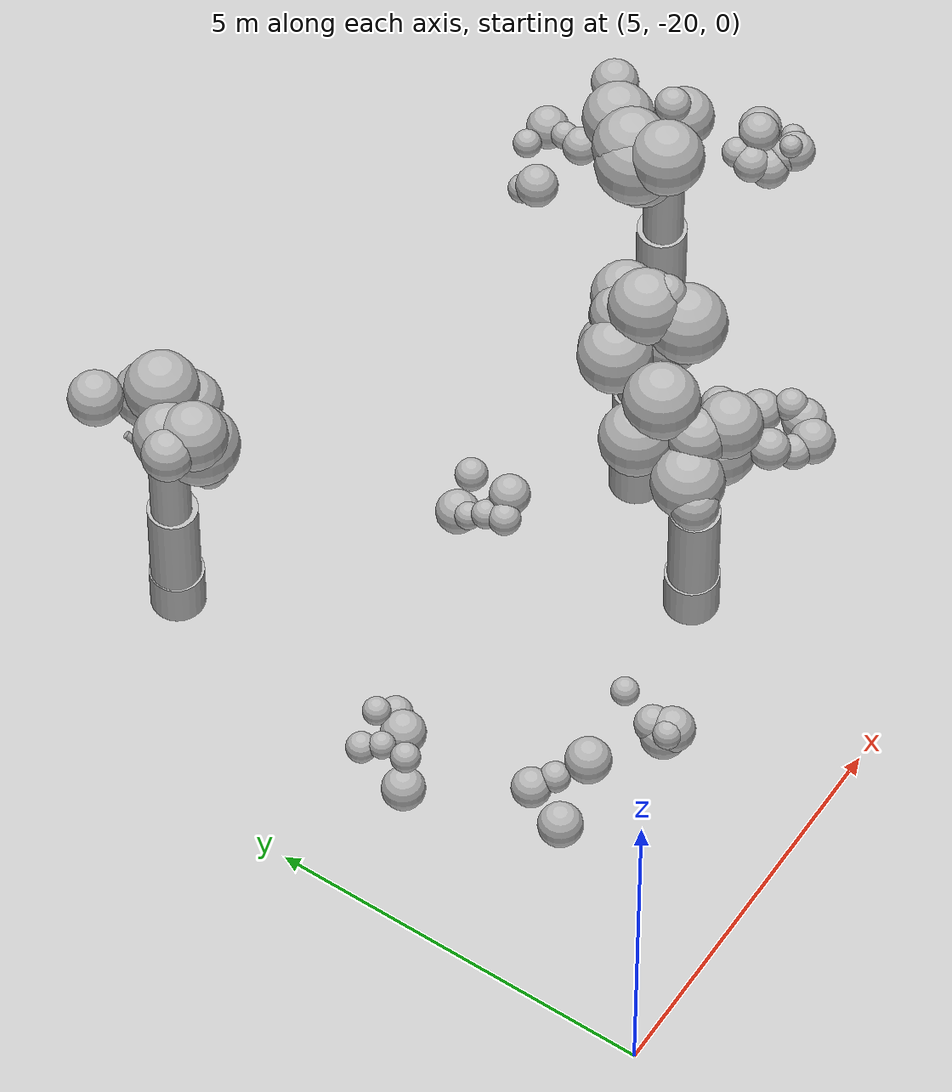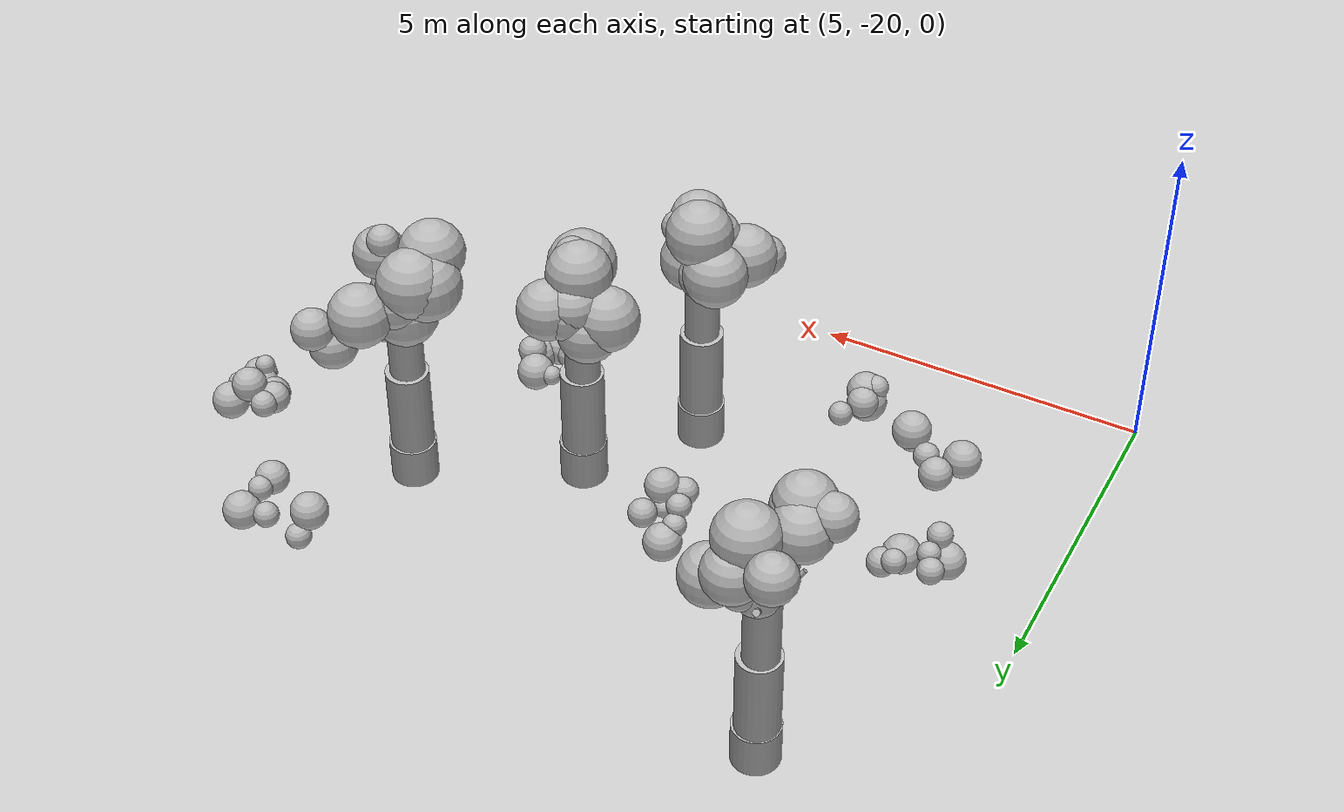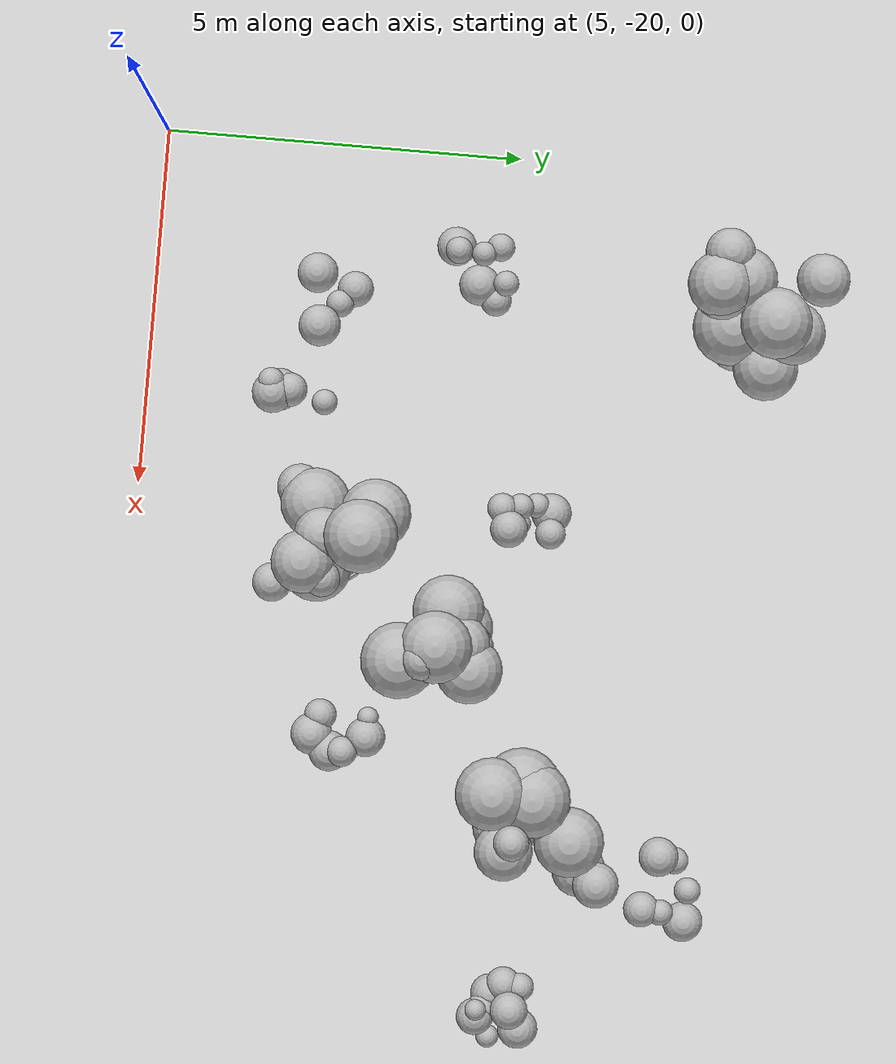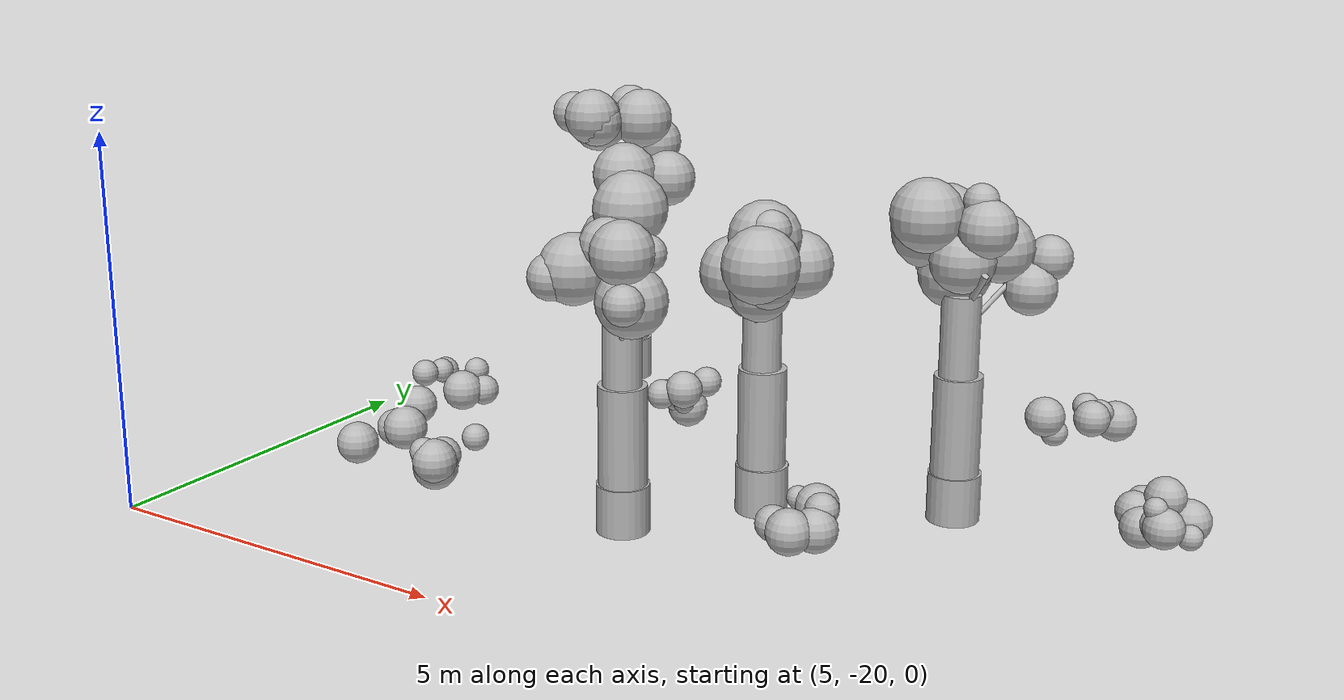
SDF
<sdf version="1.6">
 <world name="default">
  <model name="bush_1">
   <static>true</static>
   <pose>10.8140 -17.0598 0 0 0 0</pose>
   <link name="trunk">
    <pose>0 0 1.5000 0 0 0</pose>
    <collision name="trunk_c">
     <geometry><cylinder><radius>0.3500</radius><length>3.0000</length></cylinder></geometry>
    </collision>
   </link>
   <link name="trunk_v0">
    <pose>0.0004 -0.0008 0.3100 0 0 0</pose>
    <visual name="trunk_v0_v">
     <geometry><cylinder><radius>0.3448</radius><length>0.6448</length></cylinder></geometry>
     <material>
      <script>
       <uri>model://bushfire/materials/scripts</uri>
       <uri>model://bushfire/materials/textures</uri>
       <name>Bushfire/CharBark</name>
      </script>
     </material>
    </visual>
   </link>
   <link name="trunk_v1">
    <pose>0.0031 -0.0061 1.2700 0 0 0</pose>
    <visual name="trunk_v1_v">
     <geometry><cylinder><radius>0.3150</radius><length>1.3520</length></cylinder></geometry>
     <material>
      <script>
       <uri>model://bushfire/materials/scripts</uri>
       <uri>model://bushfire/materials/textures</uri>
       <name>Bushfire/BarkStringy</name>
      </script>
     </material>
    </visual>
   </link>
   <link name="trunk_v2">
    <pose>0.0079 -0.0153 2.4600 0 0 0</pose>
    <visual name="trunk_v2_v">
     <geometry><cylinder><radius>0.2520</radius><length>1.1232</length></cylinder></geometry>
     <material>
      <script>
       <uri>model://bushfire/materials/scripts</uri>
       <uri>model://bushfire/materials/textures</uri>
       <name>Bushfire/BarkStringy</name>
      </script>
     </material>
    </visual>
   </link>
   <link name="branch0">
    <pose>-0.2689 -0.1143 3.0742 0 0.8864 3.5434</pose>
    <visual name="branch0_v">
     <geometry><cylinder><radius>0.0545</radius><length>0.7542</length></cylinder></geometry>
     <material>
      <script>
       <uri>model://bushfire/materials/scripts</uri>
       <uri>model://bushfire/materials/textures</uri>
       <name>Bushfire/BarkStringy</name>
      </script>
     </material>
    </visual>
   </link>
   <link name="branch1">
    <pose>0.1735 -0.2664 2.6885 0 0.8909 5.2895</pose>
    <visual name="branch1_v">
     <geometry><cylinder><radius>0.0355</radius><length>0.8177</length></cylinder></geometry>
     <material>
      <script>
       <uri>model://bushfire/materials/scripts</uri>
       <uri>model://bushfire/materials/textures</uri>
       <name>Bushfire/BarkStringy</name>
      </script>
     </material>
    </visual>
   </link>
   <link name="branch2">
    <pose>0.1869 0.1069 2.9350 0 0.6885 6.8027</pose>
    <visual name="branch2_v">
     <geometry><cylinder><radius>0.0526</radius><length>0.6779</length></cylinder></geometry>
     <material>
      <script>
       <uri>model://bushfire/materials/scripts</uri>
       <uri>model://bushfire/materials/textures</uri>
       <name>Bushfire/BarkStringy</name>
      </script>
     </material>
    </visual>
   </link>
   <link name="branch3">
    <pose>-0.3016 0.1931 3.0876 0 0.8942 8.8553</pose>
    <visual name="branch3_v">
     <geometry><cylinder><radius>0.0506</radius><length>0.9186</length></cylinder></geometry>
     <material>
      <script>
       <uri>model://bushfire/materials/scripts</uri>
       <uri>model://bushfire/materials/textures</uri>
       <name>Bushfire/BarkStringy</name>
      </script>
     </material>
    </visual>
   </link>
   <link name="foliage0">
    <pose>-0.5634 -0.2258 3.4097 0 0 0</pose>
    <visual name="foliage0_v">
     <geometry><sphere><radius>0.4536</radius></sphere></geometry>
     <material>
      <script>
       <uri>model://bushfire/materials/scripts</uri>
       <uri>model://bushfire/materials/textures</uri>
       <name>Bushfire/Foliage2</name>
      </script>
     </material>
    </visual>
   </link>
   <link name="foliage1">
    <pose>-0.0675 -0.2180 3.7454 0 0 0</pose>
    <visual name="foliage1_v">
     <geometry><sphere><radius>0.2466</radius></sphere></geometry>
     <material>
      <script>
       <uri>model://bushfire/materials/scripts</uri>
       <uri>model://bushfire/materials/textures</uri>
       <name>Bushfire/Foliage2</name>
      </script>
     </material>
    </visual>
   </link>
   <link name="foliage2">
    <pose>0.2465 -0.1592 3.0982 0 0 0</pose>
    <visual name="foliage2_v">
     <geometry><sphere><radius>0.4574</radius></sphere></geometry>
     <material>
      <script>
       <uri>model://bushfire/materials/scripts</uri>
       <uri>model://bushfire/materials/textures</uri>
       <name>Bushfire/Foliage2</name>
      </script>
     </material>
    </visual>
   </link>
   <link name="foliage3">
    <pose>-0.2249 0.4694 3.4221 0 0 0</pose>
    <visual name="foliage3_v">
     <geometry><sphere><radius>0.3348</radius></sphere></geometry>
     <material>
      <script>
       <uri>model://bushfire/materials/scripts</uri>
       <uri>model://bushfire/materials/textures</uri>
       <name>Bushfire/Foliage1</name>
      </script>
     </material>
    </visual>
   </link>
   <link name="foliage4">
    <pose>-0.1455 -0.0868 3.7299 0 0 0</pose>
    <visual name="foliage4_v">
     <geometry><sphere><radius>0.3629</radius></sphere></geometry>
     <material>
      <script>
       <uri>model://bushfire/materials/scripts</uri>
       <uri>model://bushfire/materials/textures</uri>
       <name>Bushfire/Foliage1</name>
      </script>
     </material>
    </visual>
   </link>
   <link name="foliage5">
    <pose>0.4994 -0.7112 3.2250 0 0 0</pose>
    <visual name="foliage5_v">
     <geometry><sphere><radius>0.2549</radius></sphere></geometry>
     <material>
      <script>
       <uri>model://bushfire/materials/scripts</uri>
       <uri>model://bushfire/materials/textures</uri>
       <name>Bushfire/Foliage0</name>
      </script>
     </material>
    </visual>
   </link>
   <link name="foliage6">
    <pose>-0.1539 0.4210 4.0975 0 0 0</pose>
    <visual name="foliage6_v">
     <geometry><sphere><radius>0.4744</radius></sphere></geometry>
     <material>
      <script>
       <uri>model://bushfire/materials/scripts</uri>
       <uri>model://bushfire/materials/textures</uri>
       <name>Bushfire/Foliage2</name>
      </script>
     </material>
    </visual>
   </link>
   <link name="foliage7">
    <pose>-0.4708 0.5657 3.5893 0 0 0</pose>
    <visual name="foliage7_v">
     <geometry><sphere><radius>0.4593</radius></sphere></geometry>
     <material>
      <script>
       <uri>model://bushfire/materials/scripts</uri>
       <uri>model://bushfire/materials/textures</uri>
       <name>Bushfire/Foliage1</name>
      </script>
     </material>
    </visual>
   </link>
   <link name="foliage8">
    <pose>-0.7569 -0.4441 3.3286 0 0 0</pose>
    <visual name="foliage8_v">
     <geometry><sphere><radius>0.2995</radius></sphere></geometry>
     <material>
      <script>
       <uri>model://bushfire/materials/scripts</uri>
       <uri>model://bushfire/materials/textures</uri>
       <name>Bushfire/Foliage0</name>
      </script>
     </material>
    </visual>
   </link>
   <link name="foliage9">
    <pose>0.2177 -0.3086 3.7391 0 0 0</pose>
    <visual name="foliage9_v">
     <geometry><sphere><radius>0.4073</radius></sphere></geometry>
     <material>
      <script>
       <uri>model://bushfire/materials/scripts</uri>
       <uri>model://bushfire/materials/textures</uri>
       <name>Bushfire/Foliage1</name>
      </script>
     </material>
    </visual>
   </link>
   <link name="foliage10">
    <pose>0.4108 -0.0477 3.7026 0 0 0</pose>
    <visual name="foliage10_v">
     <geometry><sphere><radius>0.2364</radius></sphere></geometry>
     <material>
      <script>
       <uri>model://bushfire/materials/scripts</uri>
       <uri>model://bushfire/materials/textures</uri>
       <name>Bushfire/Foliage2</name>
      </script>
     </material>
    </visual>
   </link>
  </model>
  <model name="bush_28">
   <static>true</static>
   <pose>11.9613 -15.5196 0 0 0 0</pose>
   <link name="trunk">
    <pose>0 0 1.5000 0 0 0</pose>
    <collision name="trunk_c">
     <geometry><cylinder><radius>0.3500</radius><length>3.0000</length></cylinder></geometry>
    </collision>
   </link>
   <link name="trunk_v0">
    <pose>-0.0018 0.0001 0.3100 0 0 0</pose>
    <visual name="trunk_v0_v">
     <geometry><cylinder><radius>0.3448</radius><length>0.6448</length></cylinder></geometry>
     <material>
      <script>
       <uri>model://bushfire/materials/scripts</uri>
       <uri>model://bushfire/materials/textures</uri>
       <name>Bushfire/CharBark</name>
      </script>
     </material>
    </visual>
   </link>
   <link name="trunk_v1">
    <pose>-0.0131 0.0009 1.2700 0 0 0</pose>
    <visual name="trunk_v1_v">
     <geometry><cylinder><radius>0.3150</radius><length>1.3520</length></cylinder></geometry>
     <material>
      <script>
       <uri>model://bushfire/materials/scripts</uri>
       <uri>model://bushfire/materials/textures</uri>
       <name>Bushfire/BarkSmooth</name>
      </script>
     </material>
    </visual>
   </link>
   <link name="trunk_v2">
    <pose>-0.0330 0.0023 2.4600 0 0 0</pose>
    <visual name="trunk_v2_v">
     <geometry><cylinder><radius>0.2520</radius><length>1.1232</length></cylinder></geometry>
     <material>
      <script>
       <uri>model://bushfire/materials/scripts</uri>
       <uri>model://bushfire/materials/textures</uri>
       <name>Bushfire/BarkSmooth</name>
      </script>
     </material>
    </visual>
   </link>
   <link name="branch0">
    <pose>0.1153 0.2760 2.8226 0 0.9453 1.1750</pose>
    <visual name="branch0_v">
     <geometry><cylinder><radius>0.0360</radius><length>0.7380</length></cylinder></geometry>
     <material>
      <script>
       <uri>model://bushfire/materials/scripts</uri>
       <uri>model://bushfire/materials/textures</uri>
       <name>Bushfire/BarkSmooth</name>
      </script>
     </material>
    </visual>
   </link>
   <link name="branch1">
    <pose>-0.2728 0.1218 2.7674 0 0.8919 2.7217</pose>
    <visual name="branch1_v">
     <geometry><cylinder><radius>0.0367</radius><length>0.7677</length></cylinder></geometry>
     <material>
      <script>
       <uri>model://bushfire/materials/scripts</uri>
       <uri>model://bushfire/materials/textures</uri>
       <name>Bushfire/BarkSmooth</name>
      </script>
     </material>
    </visual>
   </link>
   <link name="branch2">
    <pose>0.0167 -0.3280 2.7492 0 0.8015 4.7632</pose>
    <visual name="branch2_v">
     <geometry><cylinder><radius>0.0413</radius><length>0.9144</length></cylinder></geometry>
     <material>
      <script>
       <uri>model://bushfire/materials/scripts</uri>
       <uri>model://bushfire/materials/textures</uri>
       <name>Bushfire/BarkSmooth</name>
      </script>
     </material>
    </visual>
   </link>
   <link name="foliage0">
    <pose>0.1404 0.3869 3.3226 0 0 0</pose>
    <visual name="foliage0_v">
     <geometry><sphere><radius>0.3033</radius></sphere></geometry>
     <material>
      <script>
       <uri>model://bushfire/materials/scripts</uri>
       <uri>model://bushfire/materials/textures</uri>
       <name>Bushfire/Foliage1</name>
      </script>
     </material>
    </visual>
   </link>
   <link name="foliage1">
    <pose>-0.2549 0.2236 2.9393 0 0 0</pose>
    <visual name="foliage1_v">
     <geometry><sphere><radius>0.4356</radius></sphere></geometry>
     <material>
      <script>
       <uri>model://bushfire/materials/scripts</uri>
       <uri>model://bushfire/materials/textures</uri>
       <name>Bushfire/Foliage1</name>
      </script>
     </material>
    </visual>
   </link>
   <link name="foliage2">
    <pose>0.2262 -0.5211 3.4523 0 0 0</pose>
    <visual name="foliage2_v">
     <geometry><sphere><radius>0.4966</radius></sphere></geometry>
     <material>
      <script>
       <uri>model://bushfire/materials/scripts</uri>
       <uri>model://bushfire/materials/textures</uri>
       <name>Bushfire/Foliage0</name>
      </script>
     </material>
    </visual>
   </link>
   <link name="foliage3">
    <pose>0.2799 0.3908 3.2747 0 0 0</pose>
    <visual name="foliage3_v">
     <geometry><sphere><radius>0.4359</radius></sphere></geometry>
     <material>
      <script>
       <uri>model://bushfire/materials/scripts</uri>
       <uri>model://bushfire/materials/textures</uri>
       <name>Bushfire/Foliage2</name>
      </script>
     </material>
    </visual>
   </link>
   <link name="foliage4">
    <pose>-0.4697 0.0607 3.1471 0 0 0</pose>
    <visual name="foliage4_v">
     <geometry><sphere><radius>0.4677</radius></sphere></geometry>
     <material>
      <script>
       <uri>model://bushfire/materials/scripts</uri>
       <uri>model://bushfire/materials/textures</uri>
       <name>Bushfire/Foliage1</name>
      </script>
     </material>
    </visual>
   </link>
   <link name="foliage5">
    <pose>0.1278 -0.3514 3.0749 0 0 0</pose>
    <visual name="foliage5_v">
     <geometry><sphere><radius>0.3924</radius></sphere></geometry>
     <material>
      <script>
       <uri>model://bushfire/materials/scripts</uri>
       <uri>model://bushfire/materials/textures</uri>
       <name>Bushfire/Foliage0</name>
      </script>
     </material>
    </visual>
   </link>
   <link name="foliage6">
    <pose>0.0138 0.3159 3.2257 0 0 0</pose>
    <visual name="foliage6_v">
     <geometry><sphere><radius>0.3752</radius></sphere></geometry>
     <material>
      <script>
       <uri>model://bushfire/materials/scripts</uri>
       <uri>model://bushfire/materials/textures</uri>
       <name>Bushfire/Foliage2</name>
      </script>
     </material>
    </visual>
   </link>
   <link name="foliage7">
    <pose>-0.4136 -0.0324 3.2600 0 0 0</pose>
    <visual name="foliage7_v">
     <geometry><sphere><radius>0.2502</radius></sphere></geometry>
     <material>
      <script>
       <uri>model://bushfire/materials/scripts</uri>
       <uri>model://bushfire/materials/textures</uri>
       <name>Bushfire/Foliage0</name>
      </script>
     </material>
    </visual>
   </link>
   <link name="foliage8">
    <pose>0.2904 -0.4616 3.2398 0 0 0</pose>
    <visual name="foliage8_v">
     <geometry><sphere><radius>0.3551</radius></sphere></geometry>
     <material>
      <script>
       <uri>model://bushfire/materials/scripts</uri>
       <uri>model://bushfire/materials/textures</uri>
       <name>Bushfire/Foliage2</name>
      </script>
     </material>
    </visual>
   </link>
   <link name="foliage9">
    <pose>0.0183 -0.0582 3.6886 0 0 0</pose>
    <visual name="foliage9_v">
     <geometry><sphere><radius>0.4704</radius></sphere></geometry>
     <material>
      <script>
       <uri>model://bushfire/materials/scripts</uri>
       <uri>model://bushfire/materials/textures</uri>
       <name>Bushfire/Foliage0</name>
      </script>
     </material>
    </visual>
   </link>
   <link name="foliage10">
    <pose>-0.0392 0.2539 3.3386 0 0 0</pose>
    <visual name="foliage10_v">
     <geometry><sphere><radius>0.3864</radius></sphere></geometry>
     <material>
      <script>
       <uri>model://bushfire/materials/scripts</uri>
       <uri>model://bushfire/materials/textures</uri>
       <name>Bushfire/Foliage1</name>
      </script>
     </material>
    </visual>
   </link>
   <link name="foliage11">
    <pose>0.1950 -0.2207 3.8300 0 0 0</pose>
    <visual name="foliage11_v">
     <geometry><sphere><radius>0.2654</radius></sphere></geometry>
     <material>
      <script>
       <uri>model://bushfire/materials/scripts</uri>
       <uri>model://bushfire/materials/textures</uri>
       <name>Bushfire/Foliage0</name>
      </script>
     </material>
    </visual>
   </link>
  </model>
  <model name="bush_30">
   <static>true</static>
   <pose>7.3890 -11.7822 0 0 0 0</pose>
   <link name="trunk">
    <pose>0 0 1.5000 0 0 0</pose>
    <collision name="trunk_c">
     <geometry><cylinder><radius>0.3500</radius><length>3.0000</length></cylinder></geometry>
    </collision>
   </link>
   <link name="trunk_v0">
    <pose>-0.0018 0.0003 0.3100 0 0 0</pose>
    <visual name="trunk_v0_v">
     <geometry><cylinder><radius>0.3448</radius><length>0.6448</length></cylinder></geometry>
     <material>
      <script>
       <uri>model://bushfire/materials/scripts</uri>
       <uri>model://bushfire/materials/textures</uri>
       <name>Bushfire/CharBark</name>
      </script>
     </material>
    </visual>
   </link>
   <link name="trunk_v1">
    <pose>-0.0131 0.0024 1.2700 0 0 0</pose>
    <visual name="trunk_v1_v">
     <geometry><cylinder><radius>0.3150</radius><length>1.3520</length></cylinder></geometry>
     <material>
      <script>
       <uri>model://bushfire/materials/scripts</uri>
       <uri>model://bushfire/materials/textures</uri>
       <name>Bushfire/BarkSmooth</name>
      </script>
     </material>
    </visual>
   </link>
   <link name="trunk_v2">
    <pose>-0.0331 0.0062 2.4600 0 0 0</pose>
    <visual name="trunk_v2_v">
     <geometry><cylinder><radius>0.2520</radius><length>1.1232</length></cylinder></geometry>
     <material>
      <script>
       <uri>model://bushfire/materials/scripts</uri>
       <uri>model://bushfire/materials/textures</uri>
       <name>Bushfire/BarkSmooth</name>
      </script>
     </material>
    </visual>
   </link>
   <link name="branch0">
    <pose>-0.0874 0.2546 3.0361 0 0.8356 1.9014</pose>
    <visual name="branch0_v">
     <geometry><cylinder><radius>0.0492</radius><length>0.7259</length></cylinder></geometry>
     <material>
      <script>
       <uri>model://bushfire/materials/scripts</uri>
       <uri>model://bushfire/materials/textures</uri>
       <name>Bushfire/BarkSmooth</name>
      </script>
     </material>
    </visual>
   </link>
   <link name="branch1">
    <pose>-0.2129 -0.1761 3.0011 0 0.6851 3.8325</pose>
    <visual name="branch1_v">
     <geometry><cylinder><radius>0.0344</radius><length>0.8733</length></cylinder></geometry>
     <material>
      <script>
       <uri>model://bushfire/materials/scripts</uri>
       <uri>model://bushfire/materials/textures</uri>
       <name>Bushfire/BarkSmooth</name>
      </script>
     </material>
    </visual>
   </link>
   <link name="branch2">
    <pose>0.1911 -0.0480 2.7357 0 0.7821 6.0371</pose>
    <visual name="branch2_v">
     <geometry><cylinder><radius>0.0348</radius><length>0.5592</length></cylinder></geometry>
     <material>
      <script>
       <uri>model://bushfire/materials/scripts</uri>
       <uri>model://bushfire/materials/textures</uri>
       <name>Bushfire/BarkSmooth</name>
      </script>
     </material>
    </visual>
   </link>
   <link name="foliage0">
    <pose>0.1929 0.4359 3.7376 0 0 0</pose>
    <visual name="foliage0_v">
     <geometry><sphere><radius>0.4119</radius></sphere></geometry>
     <material>
      <script>
       <uri>model://bushfire/materials/scripts</uri>
       <uri>model://bushfire/materials/textures</uri>
       <name>Bushfire/Foliage1</name>
      </script>
     </material>
    </visual>
   </link>
   <link name="foliage1">
    <pose>-0.6938 -0.4912 4.2585 0 0 0</pose>
    <visual name="foliage1_v">
     <geometry><sphere><radius>0.3180</radius></sphere></geometry>
     <material>
      <script>
       <uri>model://bushfire/materials/scripts</uri>
       <uri>model://bushfire/materials/textures</uri>
       <name>Bushfire/Foliage1</name>
      </script>
     </material>
    </visual>
   </link>
   <link name="foliage2">
    <pose>0.1453 -0.3394 3.3462 0 0 0</pose>
    <visual name="foliage2_v">
     <geometry><sphere><radius>0.4945</radius></sphere></geometry>
     <material>
      <script>
       <uri>model://bushfire/materials/scripts</uri>
       <uri>model://bushfire/materials/textures</uri>
       <name>Bushfire/Foliage1</name>
      </script>
     </material>
    </visual>
   </link>
   <link name="foliage3">
    <pose>-0.4527 0.7167 4.1976 0 0 0</pose>
    <visual name="foliage3_v">
     <geometry><sphere><radius>0.3392</radius></sphere></geometry>
     <material>
      <script>
       <uri>model://bushfire/materials/scripts</uri>
       <uri>model://bushfire/materials/textures</uri>
       <name>Bushfire/Foliage0</name>
      </script>
     </material>
    </visual>
   </link>
   <link name="foliage4">
    <pose>-0.2896 -0.5772 4.2374 0 0 0</pose>
    <visual name="foliage4_v">
     <geometry><sphere><radius>0.4225</radius></sphere></geometry>
     <material>
      <script>
       <uri>model://bushfire/materials/scripts</uri>
       <uri>model://bushfire/materials/textures</uri>
       <name>Bushfire/Foliage0</name>
      </script>
     </material>
    </visual>
   </link>
   <link name="foliage5">
    <pose>0.0134 0.0624 3.1506 0 0 0</pose>
    <visual name="foliage5_v">
     <geometry><sphere><radius>0.3346</radius></sphere></geometry>
     <material>
      <script>
       <uri>model://bushfire/materials/scripts</uri>
       <uri>model://bushfire/materials/textures</uri>
       <name>Bushfire/Foliage2</name>
      </script>
     </material>
    </visual>
   </link>
   <link name="foliage6">
    <pose>0.1327 0.1721 4.1417 0 0 0</pose>
    <visual name="foliage6_v">
     <geometry><sphere><radius>0.4591</radius></sphere></geometry>
     <material>
      <script>
       <uri>model://bushfire/materials/scripts</uri>
       <uri>model://bushfire/materials/textures</uri>
       <name>Bushfire/Foliage0</name>
      </script>
     </material>
    </visual>
   </link>
   <link name="foliage7">
    <pose>-0.2251 -0.5521 4.1694 0 0 0</pose>
    <visual name="foliage7_v">
     <geometry><sphere><radius>0.3795</radius></sphere></geometry>
     <material>
      <script>
       <uri>model://bushfire/materials/scripts</uri>
       <uri>model://bushfire/materials/textures</uri>
       <name>Bushfire/Foliage0</name>
      </script>
     </material>
    </visual>
   </link>
   <link name="foliage8">
    <pose>0.6164 0.1573 3.2570 0 0 0</pose>
    <visual name="foliage8_v">
     <geometry><sphere><radius>0.4270</radius></sphere></geometry>
     <material>
      <script>
       <uri>model://bushfire/materials/scripts</uri>
       <uri>model://bushfire/materials/textures</uri>
       <name>Bushfire/Foliage2</name>
      </script>
     </material>
    </visual>
   </link>
   <link name="foliage9">
    <pose>0.0443 0.0770 3.3431 0 0 0</pose>
    <visual name="foliage9_v">
     <geometry><sphere><radius>0.2146</radius></sphere></geometry>
     <material>
      <script>
       <uri>model://bushfire/materials/scripts</uri>
       <uri>model://bushfire/materials/textures</uri>
       <name>Bushfire/Foliage1</name>
      </script>
     </material>
    </visual>
   </link>
   <link name="foliage10">
    <pose>-0.3848 -0.2713 4.0855 0 0 0</pose>
    <visual name="foliage10_v">
     <geometry><sphere><radius>0.4240</radius></sphere></geometry>
     <material>
      <script>
       <uri>model://bushfire/materials/scripts</uri>
       <uri>model://bushfire/materials/textures</uri>
       <name>Bushfire/Foliage2</name>
      </script>
     </material>
    </visual>
   </link>
   <link name="foliage11">
    <pose>0.1849 -0.4299 2.8834 0 0 0</pose>
    <visual name="foliage11_v">
     <geometry><sphere><radius>0.2454</radius></sphere></geometry>
     <material>
      <script>
       <uri>model://bushfire/materials/scripts</uri>
       <uri>model://bushfire/materials/textures</uri>
       <name>Bushfire/Foliage2</name>
      </script>
     </material>
    </visual>
   </link>
   <link name="foliage12">
    <pose>0.1788 0.2338 3.2743 0 0 0</pose>
    <visual name="foliage12_v">
     <geometry><sphere><radius>0.2810</radius></sphere></geometry>
     <material>
      <script>
       <uri>model://bushfire/materials/scripts</uri>
       <uri>model://bushfire/materials/textures</uri>
       <name>Bushfire/Foliage1</name>
      </script>
     </material>
    </visual>
   </link>
  </model>
  <model name="bush_32">
   <static>true</static>
   <pose>14.1857 -14.4156 0 0 0 0</pose>
   <link name="trunk">
    <pose>0 0 1.5000 0 0 0</pose>
    <collision name="trunk_c">
     <geometry><cylinder><radius>0.3500</radius><length>3.0000</length></cylinder></geometry>
    </collision>
   </link>
   <link name="trunk_v0">
    <pose>-0.0004 -0.0014 0.3100 0 0 0</pose>
    <visual name="trunk_v0_v">
     <geometry><cylinder><radius>0.3448</radius><length>0.6448</length></cylinder></geometry>
     <material>
      <script>
       <uri>model://bushfire/materials/scripts</uri>
       <uri>model://bushfire/materials/textures</uri>
       <name>Bushfire/CharBark</name>
      </script>
     </material>
    </visual>
   </link>
   <link name="trunk_v1">
    <pose>-0.0030 -0.0098 1.2700 0 0 0</pose>
    <visual name="trunk_v1_v">
     <geometry><cylinder><radius>0.3150</radius><length>1.3520</length></cylinder></geometry>
     <material>
      <script>
       <uri>model://bushfire/materials/scripts</uri>
       <uri>model://bushfire/materials/textures</uri>
       <name>Bushfire/BarkStringy</name>
      </script>
     </material>
    </visual>
   </link>
   <link name="trunk_v2">
    <pose>-0.0076 -0.0246 2.4600 0 0 0</pose>
    <visual name="trunk_v2_v">
     <geometry><cylinder><radius>0.2520</radius><length>1.1232</length></cylinder></geometry>
     <material>
      <script>
       <uri>model://bushfire/materials/scripts</uri>
       <uri>model://bushfire/materials/textures</uri>
       <name>Bushfire/BarkStringy</name>
      </script>
     </material>
    </visual>
   </link>
   <link name="branch0">
    <pose>0.1480 0.3706 2.7666 0 1.0079 1.1909</pose>
    <visual name="branch0_v">
     <geometry><cylinder><radius>0.0355</radius><length>0.9436</length></cylinder></geometry>
     <material>
      <script>
       <uri>model://bushfire/materials/scripts</uri>
       <uri>model://bushfire/materials/textures</uri>
       <name>Bushfire/BarkStringy</name>
      </script>
     </material>
    </visual>
   </link>
   <link name="branch1">
    <pose>-0.3107 -0.0276 3.0321 0 0.8666 3.2303</pose>
    <visual name="branch1_v">
     <geometry><cylinder><radius>0.0327</radius><length>0.8185</length></cylinder></geometry>
     <material>
      <script>
       <uri>model://bushfire/materials/scripts</uri>
       <uri>model://bushfire/materials/textures</uri>
       <name>Bushfire/BarkStringy</name>
      </script>
     </material>
    </visual>
   </link>
   <link name="branch2">
    <pose>0.2007 -0.1463 3.0537 0 0.6634 5.6535</pose>
    <visual name="branch2_v">
     <geometry><cylinder><radius>0.0450</radius><length>0.8066</length></cylinder></geometry>
     <material>
      <script>
       <uri>model://bushfire/materials/scripts</uri>
       <uri>model://bushfire/materials/textures</uri>
       <name>Bushfire/BarkStringy</name>
      </script>
     </material>
    </visual>
   </link>
   <link name="foliage0">
    <pose>0.1444 0.7516 3.4713 0 0 0</pose>
    <visual name="foliage0_v">
     <geometry><sphere><radius>0.4543</radius></sphere></geometry>
     <material>
      <script>
       <uri>model://bushfire/materials/scripts</uri>
       <uri>model://bushfire/materials/textures</uri>
       <name>Bushfire/Foliage1</name>
      </script>
     </material>
    </visual>
   </link>
   <link name="foliage1">
    <pose>-0.4074 -0.2901 4.0291 0 0 0</pose>
    <visual name="foliage1_v">
     <geometry><sphere><radius>0.4698</radius></sphere></geometry>
     <material>
      <script>
       <uri>model://bushfire/materials/scripts</uri>
       <uri>model://bushfire/materials/textures</uri>
       <name>Bushfire/Foliage0</name>
      </script>
     </material>
    </visual>
   </link>
   <link name="foliage2">
    <pose>0.1803 0.0007 4.2207 0 0 0</pose>
    <visual name="foliage2_v">
     <geometry><sphere><radius>0.2270</radius></sphere></geometry>
     <material>
      <script>
       <uri>model://bushfire/materials/scripts</uri>
       <uri>model://bushfire/materials/textures</uri>
       <name>Bushfire/Foliage0</name>
      </script>
     </material>
    </visual>
   </link>
   <link name="foliage3">
    <pose>0.5204 0.9246 2.9501 0 0 0</pose>
    <visual name="foliage3_v">
     <geometry><sphere><radius>0.3511</radius></sphere></geometry>
     <material>
      <script>
       <uri>model://bushfire/materials/scripts</uri>
       <uri>model://bushfire/materials/textures</uri>
       <name>Bushfire/Foliage1</name>
      </script>
     </material>
    </visual>
   </link>
   <link name="foliage4">
    <pose>-0.2119 0.1807 3.2319 0 0 0</pose>
    <visual name="foliage4_v">
     <geometry><sphere><radius>0.4725</radius></sphere></geometry>
     <material>
      <script>
       <uri>model://bushfire/materials/scripts</uri>
       <uri>model://bushfire/materials/textures</uri>
       <name>Bushfire/Foliage1</name>
      </script>
     </material>
    </visual>
   </link>
   <link name="foliage5">
    <pose>0.0032 -0.0815 3.4672 0 0 0</pose>
    <visual name="foliage5_v">
     <geometry><sphere><radius>0.4231</radius></sphere></geometry>
     <material>
      <script>
       <uri>model://bushfire/materials/scripts</uri>
       <uri>model://bushfire/materials/textures</uri>
       <name>Bushfire/Foliage2</name>
      </script>
     </material>
    </visual>
   </link>
   <link name="foliage6">
    <pose>0.6748 1.1468 3.3203 0 0 0</pose>
    <visual name="foliage6_v">
     <geometry><sphere><radius>0.2986</radius></sphere></geometry>
     <material>
      <script>
       <uri>model://bushfire/materials/scripts</uri>
       <uri>model://bushfire/materials/textures</uri>
       <name>Bushfire/Foliage2</name>
      </script>
     </material>
    </visual>
   </link>
   <link name="foliage7">
    <pose>-0.3821 0.2197 3.8436 0 0 0</pose>
    <visual name="foliage7_v">
     <geometry><sphere><radius>0.4992</radius></sphere></geometry>
     <material>
      <script>
       <uri>model://bushfire/materials/scripts</uri>
       <uri>model://bushfire/materials/textures</uri>
       <name>Bushfire/Foliage0</name>
      </script>
     </material>
    </visual>
   </link>
   <link name="foliage8">
    <pose>0.3101 -0.0848 3.9103 0 0 0</pose>
    <visual name="foliage8_v">
     <geometry><sphere><radius>0.3749</radius></sphere></geometry>
     <material>
      <script>
       <uri>model://bushfire/materials/scripts</uri>
       <uri>model://bushfire/materials/textures</uri>
       <name>Bushfire/Foliage0</name>
      </script>
     </material>
    </visual>
   </link>
   <link name="foliage9">
    <pose>-0.1949 0.3987 3.5395 0 0 0</pose>
    <visual name="foliage9_v">
     <geometry><sphere><radius>0.3546</radius></sphere></geometry>
     <material>
      <script>
       <uri>model://bushfire/materials/scripts</uri>
       <uri>model://bushfire/materials/textures</uri>
       <name>Bushfire/Foliage1</name>
      </script>
     </material>
    </visual>
   </link>
   <link name="foliage10">
    <pose>-0.5226 0.0861 3.7543 0 0 0</pose>
    <visual name="foliage10_v">
     <geometry><sphere><radius>0.5037</radius></sphere></geometry>
     <material>
      <script>
       <uri>model://bushfire/materials/scripts</uri>
       <uri>model://bushfire/materials/textures</uri>
       <name>Bushfire/Foliage2</name>
      </script>
     </material>
    </visual>
   </link>
  </model>
  <model name="scrub">
   <static>true</static>
   <link name="scrub4_0">
    <pose>6.4853 -15.7530 0.9473 0 0 0</pose>
    <visual name="scrub4_0_v">
     <geometry><sphere><radius>0.1864</radius></sphere></geometry>
     <material>
      <script>
       <uri>model://bushfire/materials/scripts</uri>
       <uri>model://bushfire/materials/textures</uri>
       <name>Bushfire/Foliage1</name>
      </script>
     </material>
    </visual>
   </link>
   <link name="scrub4_1">
    <pose>6.9093 -15.4338 0.6718 0 0 0</pose>
    <visual name="scrub4_1_v">
     <geometry><sphere><radius>0.2835</radius></sphere></geometry>
     <material>
      <script>
       <uri>model://bushfire/materials/scripts</uri>
       <uri>model://bushfire/materials/textures</uri>
       <name>Bushfire/Foliage0</name>
      </script>
     </material>
    </visual>
   </link>
   <link name="scrub4_2">
    <pose>6.3657 -15.7989 0.4534 0 0 0</pose>
    <visual name="scrub4_2_v">
     <geometry><sphere><radius>0.2726</radius></sphere></geometry>
     <material>
      <script>
       <uri>model://bushfire/materials/scripts</uri>
       <uri>model://bushfire/materials/textures</uri>
       <name>Bushfire/Foliage1</name>
      </script>
     </material>
    </visual>
   </link>
   <link name="scrub4_3">
    <pose>6.3836 -15.1817 0.8126 0 0 0</pose>
    <visual name="scrub4_3_v">
     <geometry><sphere><radius>0.1932</radius></sphere></geometry>
     <material>
      <script>
       <uri>model://bushfire/materials/scripts</uri>
       <uri>model://bushfire/materials/textures</uri>
       <name>Bushfire/Foliage2</name>
      </script>
     </material>
    </visual>
   </link>
   <link name="scrub4_4">
    <pose>6.8830 -15.0678 0.8752 0 0 0</pose>
    <visual name="scrub4_4_v">
     <geometry><sphere><radius>0.1768</radius></sphere></geometry>
     <material>
      <script>
       <uri>model://bushfire/materials/scripts</uri>
       <uri>model://bushfire/materials/textures</uri>
       <name>Bushfire/Foliage0</name>
      </script>
     </material>
    </visual>
   </link>
   <link name="scrub4_5">
    <pose>7.1064 -15.1918 0.6442 0 0 0</pose>
    <visual name="scrub4_5_v">
     <geometry><sphere><radius>0.2145</radius></sphere></geometry>
     <material>
      <script>
       <uri>model://bushfire/materials/scripts</uri>
       <uri>model://bushfire/materials/textures</uri>
       <name>Bushfire/Foliage2</name>
      </script>
     </material>
    </visual>
   </link>
   <link name="scrub4_6">
    <pose>6.8027 -15.4537 0.6832 0 0 0</pose>
    <visual name="scrub4_6_v">
     <geometry><sphere><radius>0.1571</radius></sphere></geometry>
     <material>
      <script>
       <uri>model://bushfire/materials/scripts</uri>
       <uri>model://bushfire/materials/textures</uri>
       <name>Bushfire/Foliage1</name>
      </script>
     </material>
    </visual>
   </link>
   <link name="scrub4_7">
    <pose>6.5017 -15.4024 0.8963 0 0 0</pose>
    <visual name="scrub4_7_v">
     <geometry><sphere><radius>0.1692</radius></sphere></geometry>
     <material>
      <script>
       <uri>model://bushfire/materials/scripts</uri>
       <uri>model://bushfire/materials/textures</uri>
       <name>Bushfire/Foliage0</name>
      </script>
     </material>
    </visual>
   </link>
   <link name="scrub17_0">
    <pose>8.7348 -17.4248 0.9370 0 0 0</pose>
    <visual name="scrub17_0_v">
     <geometry><sphere><radius>0.1765</radius></sphere></geometry>
     <material>
      <script>
       <uri>model://bushfire/materials/scripts</uri>
       <uri>model://bushfire/materials/textures</uri>
       <name>Bushfire/Foliage1</name>
      </script>
     </material>
    </visual>
   </link>
   <link name="scrub17_1">
    <pose>8.5921 -17.9195 0.8204 0 0 0</pose>
    <visual name="scrub17_1_v">
     <geometry><sphere><radius>0.2348</radius></sphere></geometry>
     <material>
      <script>
       <uri>model://bushfire/materials/scripts</uri>
       <uri>model://bushfire/materials/textures</uri>
       <name>Bushfire/Foliage1</name>
      </script>
     </material>
    </visual>
   </link>
   <link name="scrub17_2">
    <pose>8.4999 -18.1839 0.9306 0 0 0</pose>
    <visual name="scrub17_2_v">
     <geometry><sphere><radius>0.1833</radius></sphere></geometry>
     <material>
      <script>
       <uri>model://bushfire/materials/scripts</uri>
       <uri>model://bushfire/materials/textures</uri>
       <name>Bushfire/Foliage0</name>
      </script>
     </material>
    </visual>
   </link>
   <link name="scrub17_3">
    <pose>8.6491 -18.1605 0.8261 0 0 0</pose>
    <visual name="scrub17_3_v">
     <geometry><sphere><radius>0.2853</radius></sphere></geometry>
     <material>
      <script>
       <uri>model://bushfire/materials/scripts</uri>
       <uri>model://bushfire/materials/textures</uri>
       <name>Bushfire/Foliage0</name>
      </script>
     </material>
    </visual>
   </link>
   <link name="scrub17_4">
    <pose>8.5896 -18.0752 0.7078 0 0 0</pose>
    <visual name="scrub17_4_v">
     <geometry><sphere><radius>0.2949</radius></sphere></geometry>
     <material>
      <script>
       <uri>model://bushfire/materials/scripts</uri>
       <uri>model://bushfire/materials/textures</uri>
       <name>Bushfire/Foliage0</name>
      </script>
     </material>
    </visual>
   </link>
   <link name="scrub20_0">
    <pose>7.1103 -17.1449 0.6684 0 0 0</pose>
    <visual name="scrub20_0_v">
     <geometry><sphere><radius>0.2489</radius></sphere></geometry>
     <material>
      <script>
       <uri>model://bushfire/materials/scripts</uri>
       <uri>model://bushfire/materials/textures</uri>
       <name>Bushfire/Foliage2</name>
      </script>
     </material>
    </visual>
   </link>
   <link name="scrub20_1">
    <pose>7.6800 -17.5861 0.9103 0 0 0</pose>
    <visual name="scrub20_1_v">
     <geometry><sphere><radius>0.2887</radius></sphere></geometry>
     <material>
      <script>
       <uri>model://bushfire/materials/scripts</uri>
       <uri>model://bushfire/materials/textures</uri>
       <name>Bushfire/Foliage0</name>
      </script>
     </material>
    </visual>
   </link>
   <link name="scrub20_2">
    <pose>7.6394 -17.5339 0.8137 0 0 0</pose>
    <visual name="scrub20_2_v">
     <geometry><sphere><radius>0.1984</radius></sphere></geometry>
     <material>
      <script>
       <uri>model://bushfire/materials/scripts</uri>
       <uri>model://bushfire/materials/textures</uri>
       <name>Bushfire/Foliage1</name>
      </script>
     </material>
    </visual>
   </link>
   <link name="scrub20_3">
    <pose>6.9123 -17.6915 0.5739 0 0 0</pose>
    <visual name="scrub20_3_v">
     <geometry><sphere><radius>0.2807</radius></sphere></geometry>
     <material>
      <script>
       <uri>model://bushfire/materials/scripts</uri>
       <uri>model://bushfire/materials/textures</uri>
       <name>Bushfire/Foliage0</name>
      </script>
     </material>
    </visual>
   </link>
   <link name="scrub20_4">
    <pose>7.3395 -17.3365 0.7654 0 0 0</pose>
    <visual name="scrub20_4_v">
     <geometry><sphere><radius>0.1917</radius></sphere></geometry>
     <material>
      <script>
       <uri>model://bushfire/materials/scripts</uri>
       <uri>model://bushfire/materials/textures</uri>
       <name>Bushfire/Foliage2</name>
      </script>
     </material>
    </visual>
   </link>
   <link name="scrub27_0">
    <pose>16.8855 -14.6523 0.8070 0 0 0</pose>
    <visual name="scrub27_0_v">
     <geometry><sphere><radius>0.1458</radius></sphere></geometry>
     <material>
      <script>
       <uri>model://bushfire/materials/scripts</uri>
       <uri>model://bushfire/materials/textures</uri>
       <name>Bushfire/Foliage2</name>
      </script>
     </material>
    </visual>
   </link>
   <link name="scrub27_1">
    <pose>16.8570 -14.1934 0.7938 0 0 0</pose>
    <visual name="scrub27_1_v">
     <geometry><sphere><radius>0.2592</radius></sphere></geometry>
     <material>
      <script>
       <uri>model://bushfire/materials/scripts</uri>
       <uri>model://bushfire/materials/textures</uri>
       <name>Bushfire/Foliage0</name>
      </script>
     </material>
    </visual>
   </link>
   <link name="scrub27_2">
    <pose>17.2696 -14.4568 0.4571 0 0 0</pose>
    <visual name="scrub27_2_v">
     <geometry><sphere><radius>0.1580</radius></sphere></geometry>
     <material>
      <script>
       <uri>model://bushfire/materials/scripts</uri>
       <uri>model://bushfire/materials/textures</uri>
       <name>Bushfire/Foliage1</name>
      </script>
     </material>
    </visual>
   </link>
   <link name="scrub27_3">
    <pose>16.5404 -14.0672 0.6342 0 0 0</pose>
    <visual name="scrub27_3_v">
     <geometry><sphere><radius>0.1962</radius></sphere></geometry>
     <material>
      <script>
       <uri>model://bushfire/materials/scripts</uri>
       <uri>model://bushfire/materials/textures</uri>
       <name>Bushfire/Foliage0</name>
      </script>
     </material>
    </visual>
   </link>
   <link name="scrub27_4">
    <pose>16.6684 -14.4731 0.4618 0 0 0</pose>
    <visual name="scrub27_4_v">
     <geometry><sphere><radius>0.2618</radius></sphere></geometry>
     <material>
      <script>
       <uri>model://bushfire/materials/scripts</uri>
       <uri>model://bushfire/materials/textures</uri>
       <name>Bushfire/Foliage2</name>
      </script>
     </material>
    </visual>
   </link>
   <link name="scrub27_5">
    <pose>16.9995 -14.6533 0.5843 0 0 0</pose>
    <visual name="scrub27_5_v">
     <geometry><sphere><radius>0.2549</radius></sphere></geometry>
     <material>
      <script>
       <uri>model://bushfire/materials/scripts</uri>
       <uri>model://bushfire/materials/textures</uri>
       <name>Bushfire/Foliage1</name>
      </script>
     </material>
    </visual>
   </link>
   <link name="scrub27_6">
    <pose>16.5188 -14.2982 0.5913 0 0 0</pose>
    <visual name="scrub27_6_v">
     <geometry><sphere><radius>0.2375</radius></sphere></geometry>
     <material>
      <script>
       <uri>model://bushfire/materials/scripts</uri>
       <uri>model://bushfire/materials/textures</uri>
       <name>Bushfire/Foliage0</name>
      </script>
     </material>
    </visual>
   </link>
   <link name="scrub27_7">
    <pose>16.8812 -14.5699 0.5634 0 0 0</pose>
    <visual name="scrub27_7_v">
     <geometry><sphere><radius>0.2082</radius></sphere></geometry>
     <material>
      <script>
       <uri>model://bushfire/materials/scripts</uri>
       <uri>model://bushfire/materials/textures</uri>
       <name>Bushfire/Foliage1</name>
      </script>
     </material>
    </visual>
   </link>
   <link name="scrub27_8">
    <pose>17.1265 -14.0483 0.4900 0 0 0</pose>
    <visual name="scrub27_8_v">
     <geometry><sphere><radius>0.2774</radius></sphere></geometry>
     <material>
      <script>
       <uri>model://bushfire/materials/scripts</uri>
       <uri>model://bushfire/materials/textures</uri>
       <name>Bushfire/Foliage1</name>
      </script>
     </material>
    </visual>
   </link>
   <link name="scrub33_0">
    <pose>9.9038 -14.3857 0.8095 0 0 0</pose>
    <visual name="scrub33_0_v">
     <geometry><sphere><radius>0.1744</radius></sphere></geometry>
     <material>
      <script>
       <uri>model://bushfire/materials/scripts</uri>
       <uri>model://bushfire/materials/textures</uri>
       <name>Bushfire/Foliage2</name>
      </script>
     </material>
    </visual>
   </link>
   <link name="scrub33_1">
    <pose>10.2722 -14.7490 1.1071 0 0 0</pose>
    <visual name="scrub33_1_v">
     <geometry><sphere><radius>0.2570</radius></sphere></geometry>
     <material>
      <script>
       <uri>model://bushfire/materials/scripts</uri>
       <uri>model://bushfire/materials/textures</uri>
       <name>Bushfire/Foliage1</name>
      </script>
     </material>
    </visual>
   </link>
   <link name="scrub33_2">
    <pose>10.1777 -14.5958 0.8491 0 0 0</pose>
    <visual name="scrub33_2_v">
     <geometry><sphere><radius>0.1448</radius></sphere></geometry>
     <material>
      <script>
       <uri>model://bushfire/materials/scripts</uri>
       <uri>model://bushfire/materials/textures</uri>
       <name>Bushfire/Foliage2</name>
      </script>
     </material>
    </visual>
   </link>
   <link name="scrub33_3">
    <pose>10.2910 -14.1759 1.0662 0 0 0</pose>
    <visual name="scrub33_3_v">
     <geometry><sphere><radius>0.2081</radius></sphere></geometry>
     <material>
      <script>
       <uri>model://bushfire/materials/scripts</uri>
       <uri>model://bushfire/materials/textures</uri>
       <name>Bushfire/Foliage0</name>
      </script>
     </material>
    </visual>
   </link>
   <link name="scrub33_4">
    <pose>9.9839 -14.1762 0.6359 0 0 0</pose>
    <visual name="scrub33_4_v">
     <geometry><sphere><radius>0.2781</radius></sphere></geometry>
     <material>
      <script>
       <uri>model://bushfire/materials/scripts</uri>
       <uri>model://bushfire/materials/textures</uri>
       <name>Bushfire/Foliage1</name>
      </script>
     </material>
    </visual>
   </link>
   <link name="scrub33_5">
    <pose>9.9859 -14.8636 1.0239 0 0 0</pose>
    <visual name="scrub33_5_v">
     <geometry><sphere><radius>0.2045</radius></sphere></geometry>
     <material>
      <script>
       <uri>model://bushfire/materials/scripts</uri>
       <uri>model://bushfire/materials/textures</uri>
       <name>Bushfire/Foliage2</name>
      </script>
     </material>
    </visual>
   </link>
   <link name="scrub33_6">
    <pose>9.9480 -14.6131 0.9724 0 0 0</pose>
    <visual name="scrub33_6_v">
     <geometry><sphere><radius>0.1825</radius></sphere></geometry>
     <material>
      <script>
       <uri>model://bushfire/materials/scripts</uri>
       <uri>model://bushfire/materials/textures</uri>
       <name>Bushfire/Foliage0</name>
      </script>
     </material>
    </visual>
   </link>
   <link name="scrub40_0">
    <pose>15.4393 -11.9188 0.8083 0 0 0</pose>
    <visual name="scrub40_0_v">
     <geometry><sphere><radius>0.2759</radius></sphere></geometry>
     <material>
      <script>
       <uri>model://bushfire/materials/scripts</uri>
       <uri>model://bushfire/materials/textures</uri>
       <name>Bushfire/Foliage2</name>
      </script>
     </material>
    </visual>
   </link>
   <link name="scrub40_2">
    <pose>14.6331 -12.0672 0.5257 0 0 0</pose>
    <visual name="scrub40_2_v">
     <geometry><sphere><radius>0.1873</radius></sphere></geometry>
     <material>
      <script>
       <uri>model://bushfire/materials/scripts</uri>
       <uri>model://bushfire/materials/textures</uri>
       <name>Bushfire/Foliage1</name>
      </script>
     </material>
    </visual>
   </link>
   <link name="scrub40_5">
    <pose>15.0040 -11.8937 0.9314 0 0 0</pose>
    <visual name="scrub40_5_v">
     <geometry><sphere><radius>0.1831</radius></sphere></geometry>
     <material>
      <script>
       <uri>model://bushfire/materials/scripts</uri>
       <uri>model://bushfire/materials/textures</uri>
       <name>Bushfire/Foliage0</name>
      </script>
     </material>
    </visual>
   </link>
   <link name="scrub40_6">
    <pose>15.3047 -12.5098 0.9967 0 0 0</pose>
    <visual name="scrub40_6_v">
     <geometry><sphere><radius>0.2432</radius></sphere></geometry>
     <material>
      <script>
       <uri>model://bushfire/materials/scripts</uri>
       <uri>model://bushfire/materials/textures</uri>
       <name>Bushfire/Foliage2</name>
      </script>
     </material>
    </visual>
   </link>
   <link name="scrub40_7">
    <pose>15.3259 -12.2482 1.0028 0 0 0</pose>
    <visual name="scrub40_7_v">
     <geometry><sphere><radius>0.1774</radius></sphere></geometry>
     <material>
      <script>
       <uri>model://bushfire/materials/scripts</uri>
       <uri>model://bushfire/materials/textures</uri>
       <name>Bushfire/Foliage0</name>
      </script>
     </material>
    </visual>
   </link>
   <link name="scrub40_8">
    <pose>14.5811 -12.3168 0.8232 0 0 0</pose>
    <visual name="scrub40_8_v">
     <geometry><sphere><radius>0.2728</radius></sphere></geometry>
     <material>
      <script>
       <uri>model://bushfire/materials/scripts</uri>
       <uri>model://bushfire/materials/textures</uri>
       <name>Bushfire/Foliage0</name>
      </script>
     </material>
    </visual>
   </link>
   <link name="scrub60_0">
    <pose>13.3031 -17.2312 0.6047 0 0 0</pose>
    <visual name="scrub60_0_v">
     <geometry><sphere><radius>0.2875</radius></sphere></geometry>
     <material>
      <script>
       <uri>model://bushfire/materials/scripts</uri>
       <uri>model://bushfire/materials/textures</uri>
       <name>Bushfire/Foliage1</name>
      </script>
     </material>
    </visual>
   </link>
   <link name="scrub60_1">
    <pose>13.2863 -16.4808 0.6792 0 0 0</pose>
    <visual name="scrub60_1_v">
     <geometry><sphere><radius>0.2737</radius></sphere></geometry>
     <material>
      <script>
       <uri>model://bushfire/materials/scripts</uri>
       <uri>model://bushfire/materials/textures</uri>
       <name>Bushfire/Foliage2</name>
      </script>
     </material>
    </visual>
   </link>
   <link name="scrub60_2">
    <pose>13.5200 -16.9719 0.5859 0 0 0</pose>
    <visual name="scrub60_2_v">
     <geometry><sphere><radius>0.2830</radius></sphere></geometry>
     <material>
      <script>
       <uri>model://bushfire/materials/scripts</uri>
       <uri>model://bushfire/materials/textures</uri>
       <name>Bushfire/Foliage0</name>
      </script>
     </material>
    </visual>
   </link>
   <link name="scrub60_3">
    <pose>13.0128 -16.4669 0.7198 0 0 0</pose>
    <visual name="scrub60_3_v">
     <geometry><sphere><radius>0.1463</radius></sphere></geometry>
     <material>
      <script>
       <uri>model://bushfire/materials/scripts</uri>
       <uri>model://bushfire/materials/textures</uri>
       <name>Bushfire/Foliage0</name>
      </script>
     </material>
    </visual>
   </link>
   <link name="scrub60_4">
    <pose>13.5104 -16.7882 0.7785 0 0 0</pose>
    <visual name="scrub60_4_v">
     <geometry><sphere><radius>0.2119</radius></sphere></geometry>
     <material>
      <script>
       <uri>model://bushfire/materials/scripts</uri>
       <uri>model://bushfire/materials/textures</uri>
       <name>Bushfire/Foliage1</name>
      </script>
     </material>
    </visual>
   </link>
   <link name="scrub60_5">
    <pose>13.0323 -17.1314 0.6196 0 0 0</pose>
    <visual name="scrub60_5_v">
     <geometry><sphere><radius>0.2238</radius></sphere></geometry>
     <material>
      <script>
       <uri>model://bushfire/materials/scripts</uri>
       <uri>model://bushfire/materials/textures</uri>
       <name>Bushfire/Foliage1</name>
      </script>
     </material>
    </visual>
   </link>
  </model>
 </world>
</sdf>
